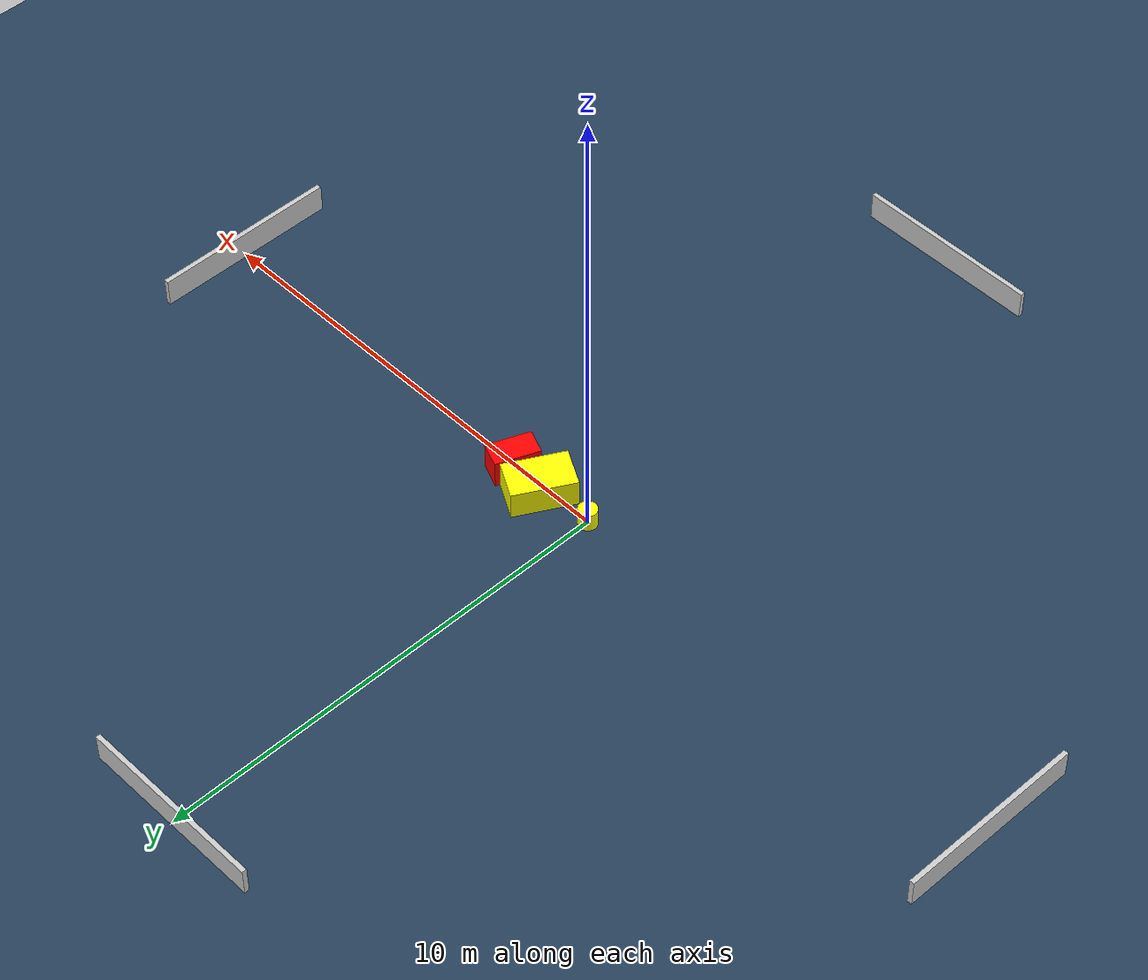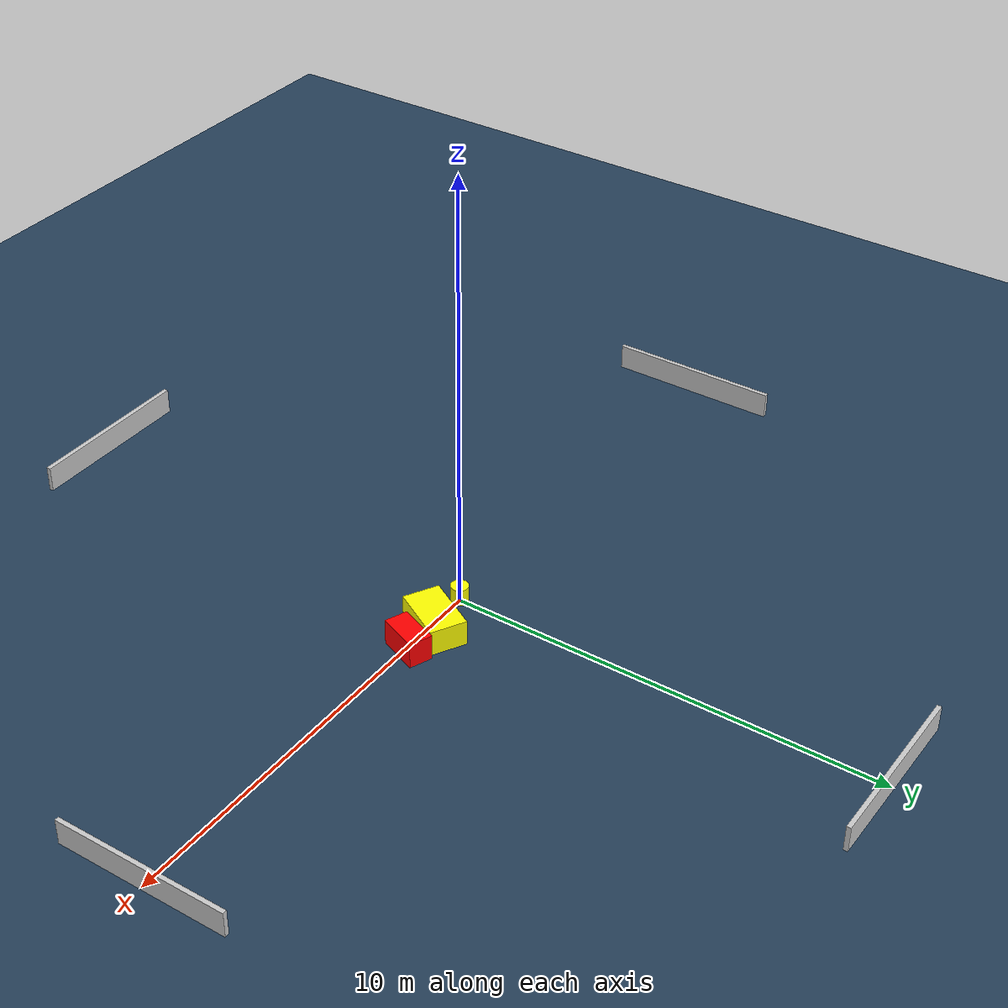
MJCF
<?xml version="1.0" ?>
<mujoco model="generated_environment">
  <option timestep="0.01" integrator="RK4" cone="elliptic"/>
  <default>
    <geom density="1"/>
  </default>
  <asset>
    <texture builtin="gradient" height="3072" name="skybox" rgb1="0.3 0.5 0.7" rgb2="0 0 0" type="skybox" width="512"/>
    <texture builtin="checker" height="300" name="groundplane" rgb1="0.2 0.3 0.4" rgb2="0.1 0.2 0.3" type="2d" width="300"/>
    <material name="groundplane" reflectance="0.2" texrepeat="5 5" texture="groundplane"/>
  </asset>
  <worldbody>
    <light dir="0 0 -1" directional="true" pos="0 0 1.5"/>
    <geom condim="3" friction="0.5 0.005 0.001" material="groundplane" name="floor" pos="0 0 0" size="0 0 0.05" type="plane"/>
    <body name="walls">
      <geom name="wall_1" condim="4" pos="-10.0 0.0 0.3" rgba="0.800000011920929 0.800000011920929 0.800000011920929 1.0" size="0.05 2.0 0.3" type="box"/>
      <geom name="wall_2" condim="4" pos="10.0 0.0 0.3" rgba="0.800000011920929 0.800000011920929 0.800000011920929 1.0" size="0.05 2.0 0.3" type="box"/>
      <geom name="wall_3" condim="4" pos="0.0 -10.0 0.3" rgba="0.800000011920929 0.800000011920929 0.800000011920929 1.0" size="2.0 0.05 0.3" type="box"/>
      <geom name="wall_4" condim="4" pos="0.0 10.0 0.3" rgba="0.800000011920929 0.800000011920929 0.800000011920929 1.0" size="2.0 0.05 0.3" type="box"/>
    </body>
    <body name="robot">
      <joint name="joint_x" type="slide" pos="0 0 0" axis="1 0 0"/>
      <joint name="joint_y" type="slide" pos="0 0 0" axis="0 1 0"/>
      <geom name="robot" type="cylinder" pos="0.0 0.0 0.2" size="0.2 0.2 0.0" mass="5.0" friction="1.0 0.005 0.0001" condim="4" rgba="1.0 1.0 0.0 1.0"/>
    </body>
    <body name="obstacle_1_movable">
      <geom name="obstacle_1_movable" condim="4" pos="1.1458908764409719 0.16230303111380218 0.3" euler="0 0 331.0703730691937" friction="0.0 0.005 0.001" rgba="1.0 1.0 0.0 1.0" size="0.418180405928286 0.6664168262221755 0.3" type="box" mass="0.1"/>
      <joint type="free"/>
    </body>
    <body name="obstacle_2_static">
      <geom name="obstacle_2_static" condim="4" pos="1.9616540827365336 0.08208754553297844 0.3" euler="0 0 158.14905183766726" friction="0.0 0.005 0.001" rgba="1.0 0.0 0.0 1.0" size="0.27016331682416656 0.4760876516097613 0.3" type="box"/>
    </body>
  </worldbody>
  <actuator>
    <motor name="actuator_x" joint="joint_x" gear="1" ctrlrange="-1 1"/>
    <motor name="actuator_y" joint="joint_y" gear="1" ctrlrange="-1 1"/>
  </actuator>
</mujoco>
